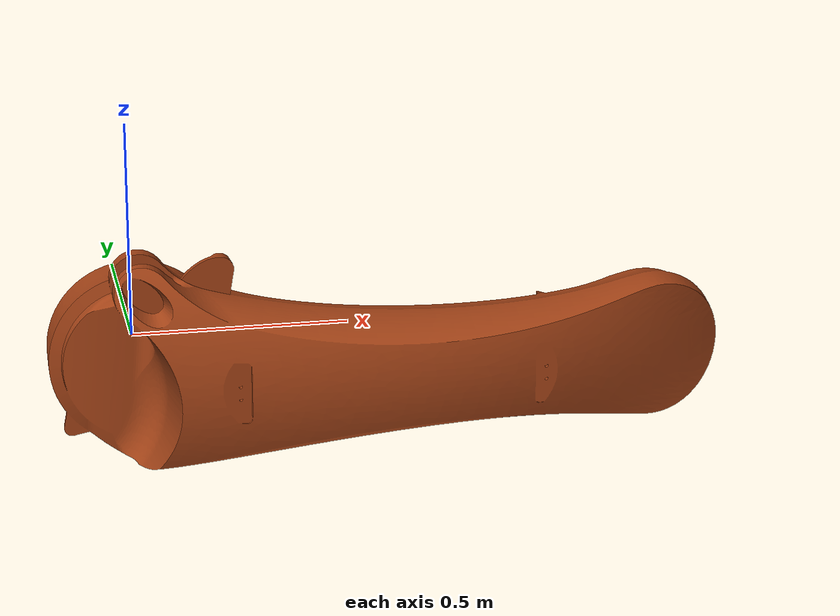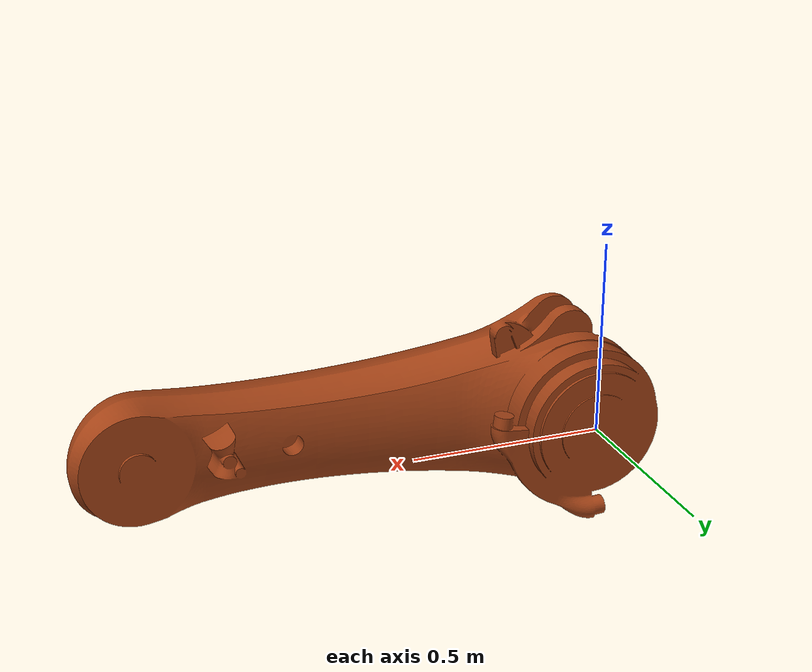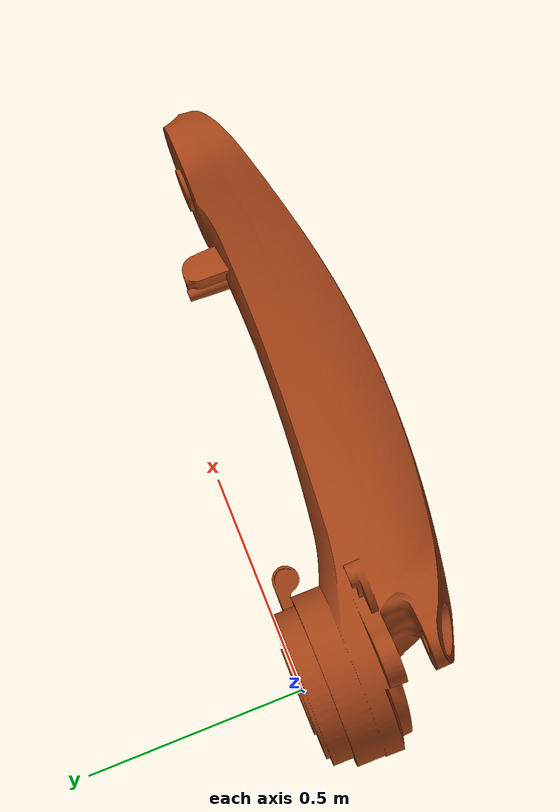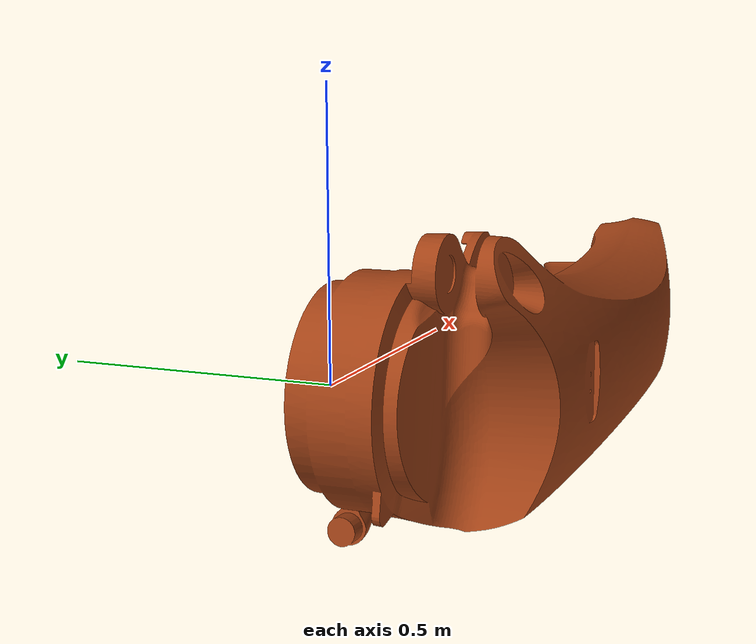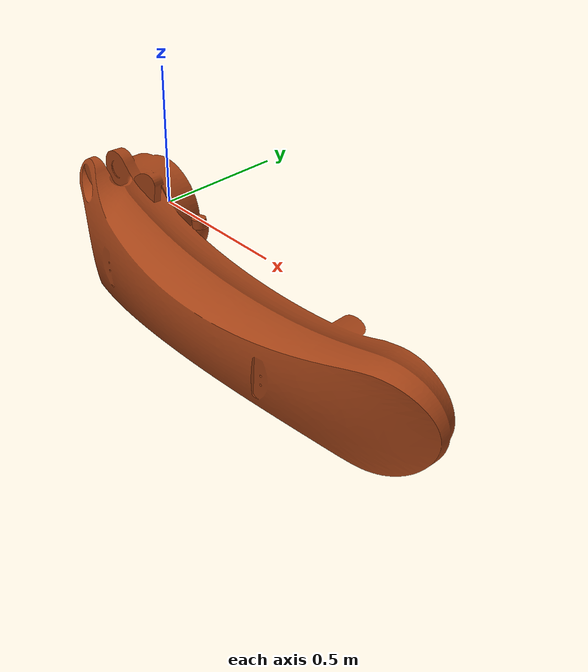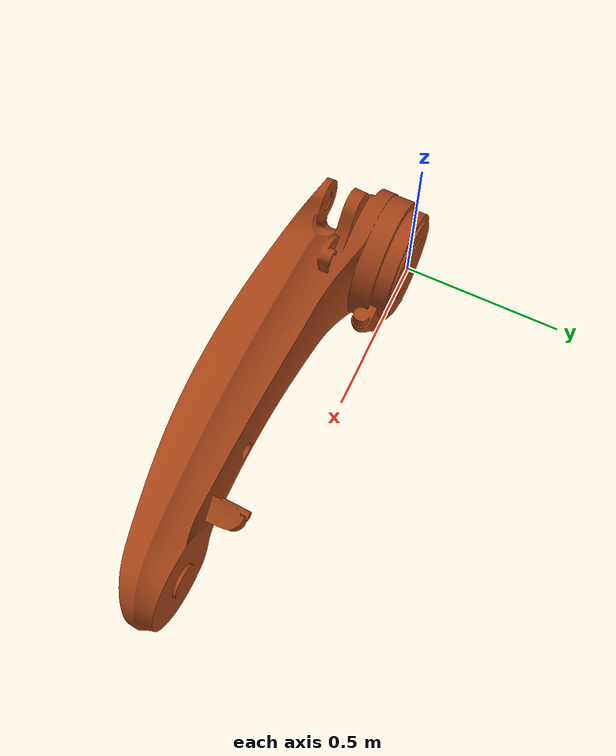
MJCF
<mujoco model="link_2">
  <default>
    <default class="visual">
      <geom group="2" type="mesh" contype="0" conaffinity="0"/>
    </default>
    <default class="collision">
      <geom group="3" type="mesh"/>
    </default>
  </default>
  <asset>
    <material name="RAL2003" specular="0.5" shininess="0.25" rgba="0.640000 0.261018 0.087840 1.000000"/>
    <mesh file="link_2.obj"/>
  </asset>
  <worldbody>
    <body name="link_2">
      <geom material="RAL2003" mesh="link_2" class="visual"/>
      <geom mesh="link_2" class="collision"/>
    </body>
  </worldbody>
</mujoco>
